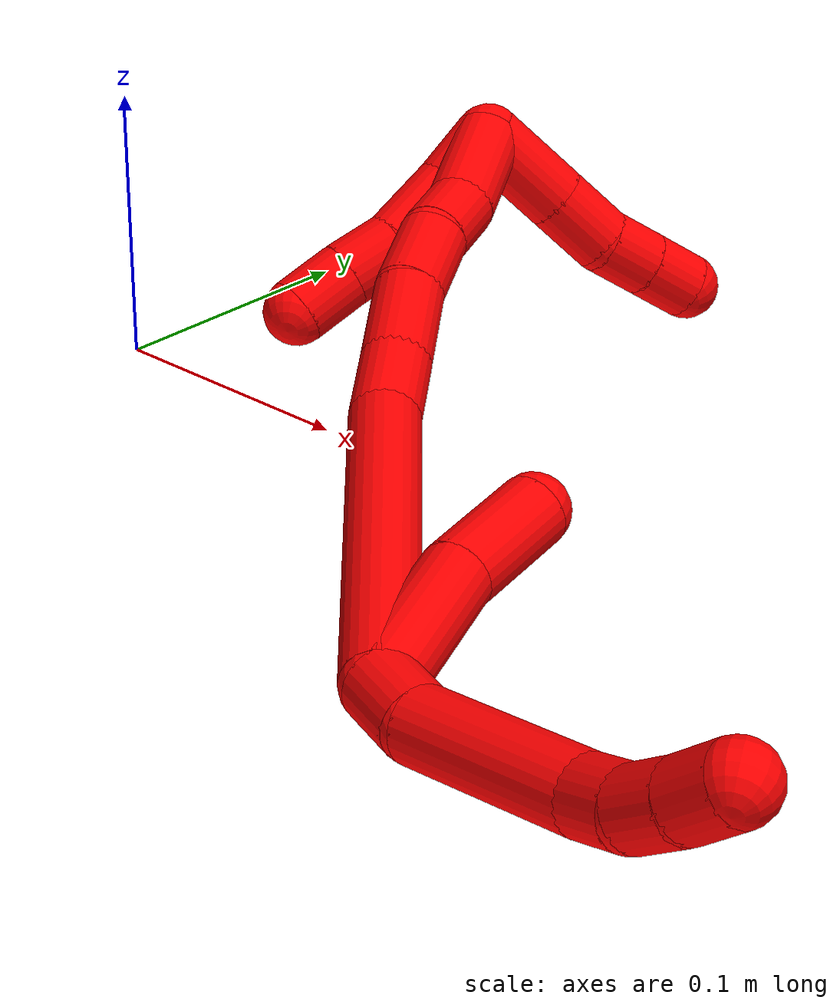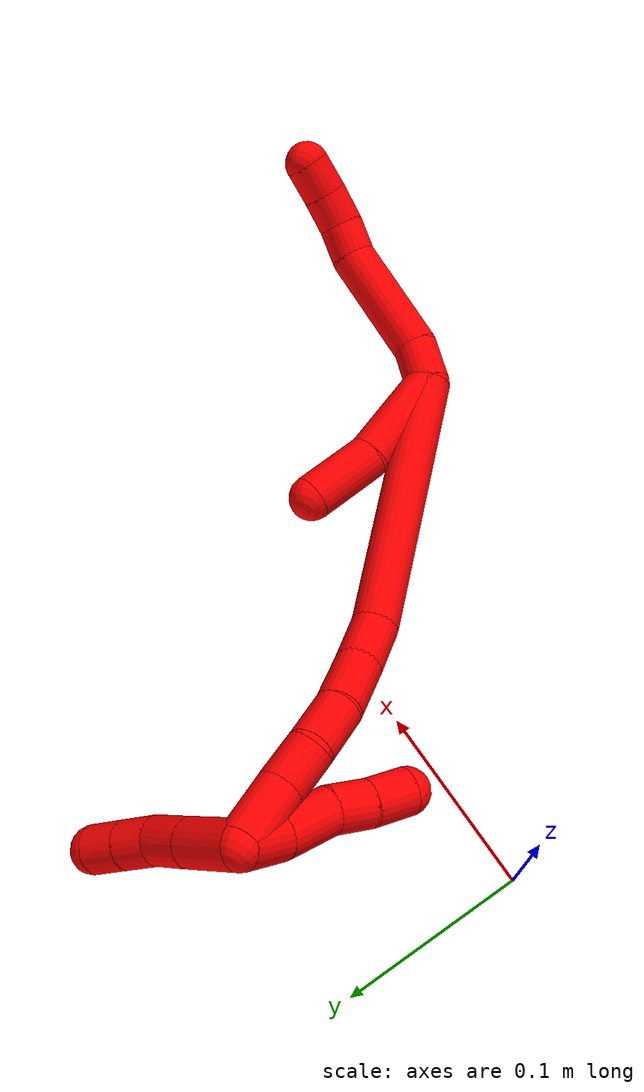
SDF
<sdf version="1.7">
 <world name="default">
  <model name="2">
   <static>0</static>
   <link name="2">
    <collision name="collision-cylinder-e_1_2_8">
     <pose>-0.007014 0.004807 0.008704 -0.504643 -0.614379 0.163212</pose>
     <geometry><cylinder><radius>0.0125</radius><length>0.024337</length></cylinder></geometry>
     <surface>
      <friction><ode><mu>1.16</mu><mu2>1.16</mu2><slip1>0</slip1><slip2>0</slip2></ode></friction>
      <contact><ode><kp>1e+06</kp><kd>1</kd><max_vel>0</max_vel><min_depth>0.001</min_depth></ode></contact>
     </surface>
    </collision>
    <visual name="visual-cylinder-e_1_2_8">
     <pose>-0.007014 0.004807 0.008704 -0.504643 -0.614379 0.163212</pose>
     <geometry><cylinder><radius>0.0125</radius><length>0.024337</length></cylinder></geometry>
     <material><ambient>1 0 0 1</ambient></material>
    </visual>
    <collision name="collision-cylinder-e_2_8_9">
     <pose>-0.037831 0.02604 0.032557 -0.825769 -0.816978 0.374772</pose>
     <geometry><cylinder><radius>0.0125</radius><length>0.065295</length></cylinder></geometry>
     <surface>
      <friction><ode><mu>1.16</mu><mu2>1.16</mu2><slip1>0</slip1><slip2>0</slip2></ode></friction>
      <contact><ode><kp>1e+06</kp><kd>1</kd><max_vel>0</max_vel><min_depth>0.001</min_depth></ode></contact>
     </surface>
    </collision>
    <visual name="visual-cylinder-e_2_8_9">
     <pose>-0.037831 0.02604 0.032557 -0.825769 -0.816978 0.374772</pose>
     <geometry><cylinder><radius>0.0125</radius><length>0.065295</length></cylinder></geometry>
     <material><ambient>1 0 0 1</ambient></material>
    </visual>
    <collision name="collision-cylinder-e_3_9_10">
     <pose>-0.069912 0.044988 0.05298 -0.446187 -0.955904 0.233969</pose>
     <geometry><cylinder><radius>0.0125</radius><length>0.020269</length></cylinder></geometry>
     <surface>
      <friction><ode><mu>1.16</mu><mu2>1.16</mu2><slip1>0</slip1><slip2>0</slip2></ode></friction>
      <contact><ode><kp>1e+06</kp><kd>1</kd><max_vel>0</max_vel><min_depth>0.001</min_depth></ode></contact>
     </surface>
    </collision>
    <visual name="visual-cylinder-e_3_9_10">
     <pose>-0.069912 0.044988 0.05298 -0.446187 -0.955904 0.233969</pose>
     <geometry><cylinder><radius>0.0125</radius><length>0.020269</length></cylinder></geometry>
     <material><ambient>1 0 0 1</ambient></material>
    </visual>
    <collision name="collision-cylinder-e_4_10_11">
     <pose>-0.087753 0.049076 0.060917 -0.531592 -1.25831 0.391213</pose>
     <geometry><cylinder><radius>0.0125</radius><length>0.020098</length></cylinder></geometry>
     <surface>
      <friction><ode><mu>1.16</mu><mu2>1.16</mu2><slip1>0</slip1><slip2>0</slip2></ode></friction>
      <contact><ode><kp>1e+06</kp><kd>1</kd><max_vel>0</max_vel><min_depth>0.001</min_depth></ode></contact>
     </surface>
    </collision>
    <visual name="visual-cylinder-e_4_10_11">
     <pose>-0.087753 0.049076 0.060917 -0.531592 -1.25831 0.391213</pose>
     <geometry><cylinder><radius>0.0125</radius><length>0.020098</length></cylinder></geometry>
     <material><ambient>1 0 0 1</ambient></material>
    </visual>
    <collision name="collision-cylinder-e_5_11_6">
     <pose>-0.107112 0.051804 0.06522 -0.616298 -1.36846 0.508028</pose>
     <geometry><cylinder><radius>0.0125</radius><length>0.020002</length></cylinder></geometry>
     <surface>
      <friction><ode><mu>1.16</mu><mu2>1.16</mu2><slip1>0</slip1><slip2>0</slip2></ode></friction>
      <contact><ode><kp>1e+06</kp><kd>1</kd><max_vel>0</max_vel><min_depth>0.001</min_depth></ode></contact>
     </surface>
    </collision>
    <visual name="visual-cylinder-e_5_11_6">
     <pose>-0.107112 0.051804 0.06522 -0.616298 -1.36846 0.508028</pose>
     <geometry><cylinder><radius>0.0125</radius><length>0.020002</length></cylinder></geometry>
     <material><ambient>1 0 0 1</ambient></material>
    </visual>
    <collision name="collision-cylinder-e_1_2_12">
     <pose>0.000442 0.005669 -0.028659 -2.9463 0.015137 -0.154221</pose>
     <geometry><cylinder><radius>0.0125</radius><length>0.058436</length></cylinder></geometry>
     <surface>
      <friction><ode><mu>1.16</mu><mu2>1.16</mu2><slip1>0</slip1><slip2>0</slip2></ode></friction>
      <contact><ode><kp>1e+06</kp><kd>1</kd><max_vel>0</max_vel><min_depth>0.001</min_depth></ode></contact>
     </surface>
    </collision>
    <visual name="visual-cylinder-e_1_2_12">
     <pose>0.000442 0.005669 -0.028659 -2.9463 0.015137 -0.154221</pose>
     <geometry><cylinder><radius>0.0125</radius><length>0.058436</length></cylinder></geometry>
     <material><ambient>1 0 0 1</ambient></material>
    </visual>
    <collision name="collision-cylinder-e_2_12_5">
     <pose>-0.002635 0.018447 -0.076527 -2.78714 -0.170184 0.888919</pose>
     <geometry><cylinder><radius>0.0125</radius><length>0.041564</length></cylinder></geometry>
     <surface>
      <friction><ode><mu>1.16</mu><mu2>1.16</mu2><slip1>0</slip1><slip2>0</slip2></ode></friction>
      <contact><ode><kp>1e+06</kp><kd>1</kd><max_vel>0</max_vel><min_depth>0.001</min_depth></ode></contact>
     </surface>
    </collision>
    <visual name="visual-cylinder-e_2_12_5">
     <pose>-0.002635 0.018447 -0.076527 -2.78714 -0.170184 0.888919</pose>
     <geometry><cylinder><radius>0.0125</radius><length>0.041564</length></cylinder></geometry>
     <material><ambient>1 0 0 1</ambient></material>
    </visual>
    <collision name="collision-cylinder-e_1_2_13">
     <pose>0.021696 -0.0072 -0.071904 3.04179 0.291666 2.48603</pose>
     <geometry><cylinder><radius>0.0125</radius><length>0.1509</length></cylinder></geometry>
     <surface>
      <friction><ode><mu>1.16</mu><mu2>1.16</mu2><slip1>0</slip1><slip2>0</slip2></ode></friction>
      <contact><ode><kp>1e+06</kp><kd>1</kd><max_vel>0</max_vel><min_depth>0.001</min_depth></ode></contact>
     </surface>
    </collision>
    <visual name="visual-cylinder-e_1_2_13">
     <pose>0.021696 -0.0072 -0.071904 3.04179 0.291666 2.48603</pose>
     <geometry><cylinder><radius>0.0125</radius><length>0.1509</length></cylinder></geometry>
     <material><ambient>1 0 0 1</ambient></material>
    </visual>
    <collision name="collision-cylinder-e_2_13_14">
     <pose>0.043401 -0.016537 -0.157438 2.9861 0.000681 0.008746</pose>
     <geometry><cylinder><radius>0.0125</radius><length>0.027594</length></cylinder></geometry>
     <surface>
      <friction><ode><mu>1.16</mu><mu2>1.16</mu2><slip1>0</slip1><slip2>0</slip2></ode></friction>
      <contact><ode><kp>1e+06</kp><kd>1</kd><max_vel>0</max_vel><min_depth>0.001</min_depth></ode></contact>
     </surface>
    </collision>
    <visual name="visual-cylinder-e_2_13_14">
     <pose>0.043401 -0.016537 -0.157438 2.9861 0.000681 0.008746</pose>
     <geometry><cylinder><radius>0.0125</radius><length>0.027594</length></cylinder></geometry>
     <material><ambient>1 0 0 1</ambient></material>
    </visual>
    <collision name="collision-cylinder-e_3_14_15">
     <pose>0.041756 -0.022076 -0.186352 2.9226 -0.105252 -0.893659</pose>
     <geometry><cylinder><radius>0.0125</radius><length>0.031489</length></cylinder></geometry>
     <surface>
      <friction><ode><mu>1.16</mu><mu2>1.16</mu2><slip1>0</slip1><slip2>0</slip2></ode></friction>
      <contact><ode><kp>1e+06</kp><kd>1</kd><max_vel>0</max_vel><min_depth>0.001</min_depth></ode></contact>
     </surface>
    </collision>
    <visual name="visual-cylinder-e_3_14_15">
     <pose>0.041756 -0.022076 -0.186352 2.9226 -0.105252 -0.893659</pose>
     <geometry><cylinder><radius>0.0125</radius><length>0.031489</length></cylinder></geometry>
     <material><ambient>1 0 0 1</ambient></material>
    </visual>
    <collision name="collision-cylinder-e_4_15_16">
     <pose>0.038229 -0.025964 -0.215361 3.10615 -0.135542 -2.6307</pose>
     <geometry><cylinder><radius>0.0125</radius><length>0.027722</length></cylinder></geometry>
     <surface>
      <friction><ode><mu>1.16</mu><mu2>1.16</mu2><slip1>0</slip1><slip2>0</slip2></ode></friction>
      <contact><ode><kp>1e+06</kp><kd>1</kd><max_vel>0</max_vel><min_depth>0.001</min_depth></ode></contact>
     </surface>
    </collision>
    <visual name="visual-cylinder-e_4_15_16">
     <pose>0.038229 -0.025964 -0.215361 3.10615 -0.135542 -2.6307</pose>
     <geometry><cylinder><radius>0.0125</radius><length>0.027722</length></cylinder></geometry>
     <material><ambient>1 0 0 1</ambient></material>
    </visual>
    <collision name="collision-cylinder-e_5_16_17">
     <pose>0.036566 -0.023997 -0.241529 -2.94688 0.016554 -0.169095</pose>
     <geometry><cylinder><radius>0.0125</radius><length>0.025368</length></cylinder></geometry>
     <surface>
      <friction><ode><mu>1.16</mu><mu2>1.16</mu2><slip1>0</slip1><slip2>0</slip2></ode></friction>
      <contact><ode><kp>1e+06</kp><kd>1</kd><max_vel>0</max_vel><min_depth>0.001</min_depth></ode></contact>
     </surface>
    </collision>
    <visual name="visual-cylinder-e_5_16_17">
     <pose>0.036566 -0.023997 -0.241529 -2.94688 0.016554 -0.169095</pose>
     <geometry><cylinder><radius>0.0125</radius><length>0.025368</length></cylinder></geometry>
     <material><ambient>1 0 0 1</ambient></material>
    </visual>
    <collision name="collision-cylinder-e_6_17_1">
     <pose>0.033877 -0.022767 -0.272165 3.07439 -0.15764 -2.33683</pose>
     <geometry><cylinder><radius>0.0125</radius><length>0.036927</length></cylinder></geometry>
     <surface>
      <friction><ode><mu>1.16</mu><mu2>1.16</mu2><slip1>0</slip1><slip2>0</slip2></ode></friction>
      <contact><ode><kp>1e+06</kp><kd>1</kd><max_vel>0</max_vel><min_depth>0.001</min_depth></ode></contact>
     </surface>
    </collision>
    <visual name="visual-cylinder-e_6_17_1">
     <pose>0.033877 -0.022767 -0.272165 3.07439 -0.15764 -2.33683</pose>
     <geometry><cylinder><radius>0.0125</radius><length>0.036927</length></cylinder></geometry>
     <material><ambient>1 0 0 1</ambient></material>
    </visual>
    <collision name="collision-cylinder-e_1_1_18">
     <pose>0.039262 -0.024595 -0.281486 0.067907 0.749932 0.026736</pose>
     <geometry><cylinder><radius>0.0125</radius><length>0.024306</length></cylinder></geometry>
     <surface>
      <friction><ode><mu>1.16</mu><mu2>1.16</mu2><slip1>0</slip1><slip2>0</slip2></ode></friction>
      <contact><ode><kp>1e+06</kp><kd>1</kd><max_vel>0</max_vel><min_depth>0.001</min_depth></ode></contact>
     </surface>
    </collision>
    <visual name="visual-cylinder-e_1_1_18">
     <pose>0.039262 -0.024595 -0.281486 0.067907 0.749932 0.026736</pose>
     <geometry><cylinder><radius>0.0125</radius><length>0.024306</length></cylinder></geometry>
     <material><ambient>1 0 0 1</ambient></material>
    </visual>
    <collision name="collision-cylinder-e_2_18_19">
     <pose>0.055371 -0.027627 -0.259188 0.17895 0.520739 0.047794</pose>
     <geometry><cylinder><radius>0.0125</radius><length>0.031457</length></cylinder></geometry>
     <surface>
      <friction><ode><mu>1.16</mu><mu2>1.16</mu2><slip1>0</slip1><slip2>0</slip2></ode></friction>
      <contact><ode><kp>1e+06</kp><kd>1</kd><max_vel>0</max_vel><min_depth>0.001</min_depth></ode></contact>
     </surface>
    </collision>
    <visual name="visual-cylinder-e_2_18_19">
     <pose>0.055371 -0.027627 -0.259188 0.17895 0.520739 0.047794</pose>
     <geometry><cylinder><radius>0.0125</radius><length>0.031457</length></cylinder></geometry>
     <material><ambient>1 0 0 1</ambient></material>
    </visual>
    <collision name="collision-cylinder-e_3_19_20">
     <pose>0.069887 -0.033991 -0.238296 0.485063 0.670439 0.171948</pose>
     <geometry><cylinder><radius>0.0125</radius><length>0.02154</length></cylinder></geometry>
     <surface>
      <friction><ode><mu>1.16</mu><mu2>1.16</mu2><slip1>0</slip1><slip2>0</slip2></ode></friction>
      <contact><ode><kp>1e+06</kp><kd>1</kd><max_vel>0</max_vel><min_depth>0.001</min_depth></ode></contact>
     </surface>
    </collision>
    <visual name="visual-cylinder-e_3_19_20">
     <pose>0.069887 -0.033991 -0.238296 0.485063 0.670439 0.171948</pose>
     <geometry><cylinder><radius>0.0125</radius><length>0.02154</length></cylinder></geometry>
     <material><ambient>1 0 0 1</ambient></material>
    </visual>
    <collision name="collision-cylinder-e_4_20_4">
     <pose>0.082833 -0.041352 -0.222003 0.370252 0.583635 0.112391</pose>
     <geometry><cylinder><radius>0.0125</radius><length>0.022697</length></cylinder></geometry>
     <surface>
      <friction><ode><mu>1.16</mu><mu2>1.16</mu2><slip1>0</slip1><slip2>0</slip2></ode></friction>
      <contact><ode><kp>1e+06</kp><kd>1</kd><max_vel>0</max_vel><min_depth>0.001</min_depth></ode></contact>
     </surface>
    </collision>
    <visual name="visual-cylinder-e_4_20_4">
     <pose>0.082833 -0.041352 -0.222003 0.370252 0.583635 0.112391</pose>
     <geometry><cylinder><radius>0.0125</radius><length>0.022697</length></cylinder></geometry>
     <material><ambient>1 0 0 1</ambient></material>
    </visual>
    <collision name="collision-cylinder-e_1_1_21">
     <pose>0.032289 -0.006424 -0.290604 -1.58482 0.074465 -0.075516</pose>
     <geometry><cylinder><radius>0.0125</radius><length>0.035237</length></cylinder></geometry>
     <surface>
      <friction><ode><mu>1.16</mu><mu2>1.16</mu2><slip1>0</slip1><slip2>0</slip2></ode></friction>
      <contact><ode><kp>1e+06</kp><kd>1</kd><max_vel>0</max_vel><min_depth>0.001</min_depth></ode></contact>
     </surface>
    </collision>
    <visual name="visual-cylinder-e_1_1_21">
     <pose>0.032289 -0.006424 -0.290604 -1.58482 0.074465 -0.075516</pose>
     <geometry><cylinder><radius>0.0125</radius><length>0.035237</length></cylinder></geometry>
     <material><ambient>1 0 0 1</ambient></material>
    </visual>
    <collision name="collision-cylinder-e_2_21_22">
     <pose>0.034436 0.023451 -0.290937 -1.57778 0.067841 -0.068316</pose>
     <geometry><cylinder><radius>0.0125</radius><length>0.024672</length></cylinder></geometry>
     <surface>
      <friction><ode><mu>1.16</mu><mu2>1.16</mu2><slip1>0</slip1><slip2>0</slip2></ode></friction>
      <contact><ode><kp>1e+06</kp><kd>1</kd><max_vel>0</max_vel><min_depth>0.001</min_depth></ode></contact>
     </surface>
    </collision>
    <visual name="visual-cylinder-e_2_21_22">
     <pose>0.034436 0.023451 -0.290937 -1.57778 0.067841 -0.068316</pose>
     <geometry><cylinder><radius>0.0125</radius><length>0.024672</length></cylinder></geometry>
     <material><ambient>1 0 0 1</ambient></material>
    </visual>
    <collision name="collision-cylinder-e_3_22_23">
     <pose>0.035105 0.045475 -0.293565 -1.82674 -0.016669 0.021592</pose>
     <geometry><cylinder><radius>0.0125</radius><length>0.020091</length></cylinder></geometry>
     <surface>
      <friction><ode><mu>1.16</mu><mu2>1.16</mu2><slip1>0</slip1><slip2>0</slip2></ode></friction>
      <contact><ode><kp>1e+06</kp><kd>1</kd><max_vel>0</max_vel><min_depth>0.001</min_depth></ode></contact>
     </surface>
    </collision>
    <visual name="visual-cylinder-e_3_22_23">
     <pose>0.035105 0.045475 -0.293565 -1.82674 -0.016669 0.021592</pose>
     <geometry><cylinder><radius>0.0125</radius><length>0.020091</length></cylinder></geometry>
     <material><ambient>1 0 0 1</ambient></material>
    </visual>
    <collision name="collision-cylinder-e_4_23_3">
     <pose>0.034825 0.064868 -0.298631 -1.82581 -0.01121 0.014507</pose>
     <geometry><cylinder><radius>0.0125</radius><length>0.020001</length></cylinder></geometry>
     <surface>
      <friction><ode><mu>1.16</mu><mu2>1.16</mu2><slip1>0</slip1><slip2>0</slip2></ode></friction>
      <contact><ode><kp>1e+06</kp><kd>1</kd><max_vel>0</max_vel><min_depth>0.001</min_depth></ode></contact>
     </surface>
    </collision>
    <visual name="visual-cylinder-e_4_23_3">
     <pose>0.034825 0.064868 -0.298631 -1.82581 -0.01121 0.014507</pose>
     <geometry><cylinder><radius>0.0125</radius><length>0.020001</length></cylinder></geometry>
     <material><ambient>1 0 0 1</ambient></material>
    </visual>
    <collision name="collision-sphere-3">
     <pose>0.034713 0.074544 -0.301153 0 -0 0</pose>
     <geometry><sphere><radius>0.0125</radius></sphere></geometry>
     <surface>
      <friction><ode><mu>1.16</mu><mu2>1.16</mu2><slip1>0</slip1><slip2>0</slip2></ode></friction>
      <contact><ode><kp>1e+06</kp><kd>1</kd><max_vel>0</max_vel><min_depth>0.001</min_depth></ode></contact>
     </surface>
    </collision>
    <visual name="visual-sphere-3">
     <pose>0.034713 0.074544 -0.301153 0 -0 0</pose>
     <geometry><sphere><radius>0.0125</radius></sphere></geometry>
     <material><ambient>1 0 0 1</ambient></material>
    </visual>
    <collision name="collision-sphere-23">
     <pose>0.034938 0.055192 -0.296108 0 -0 0</pose>
     <geometry><sphere><radius>0.0125</radius></sphere></geometry>
     <surface>
      <friction><ode><mu>1.16</mu><mu2>1.16</mu2><slip1>0</slip1><slip2>0</slip2></ode></friction>
      <contact><ode><kp>1e+06</kp><kd>1</kd><max_vel>0</max_vel><min_depth>0.001</min_depth></ode></contact>
     </surface>
    </collision>
    <visual name="visual-sphere-23">
     <pose>0.034938 0.055192 -0.296108 0 -0 0</pose>
     <geometry><sphere><radius>0.0125</radius></sphere></geometry>
     <material><ambient>1 0 0 1</ambient></material>
    </visual>
    <collision name="collision-sphere-22">
     <pose>0.035272 0.035758 -0.291023 0 -0 0</pose>
     <geometry><sphere><radius>0.0125</radius></sphere></geometry>
     <surface>
      <friction><ode><mu>1.16</mu><mu2>1.16</mu2><slip1>0</slip1><slip2>0</slip2></ode></friction>
      <contact><ode><kp>1e+06</kp><kd>1</kd><max_vel>0</max_vel><min_depth>0.001</min_depth></ode></contact>
     </surface>
    </collision>
    <visual name="visual-sphere-22">
     <pose>0.035272 0.035758 -0.291023 0 -0 0</pose>
     <geometry><sphere><radius>0.0125</radius></sphere></geometry>
     <material><ambient>1 0 0 1</ambient></material>
    </visual>
    <collision name="collision-sphere-21">
     <pose>0.0336 0.011144 -0.290851 0 -0 0</pose>
     <geometry><sphere><radius>0.0125</radius></sphere></geometry>
     <surface>
      <friction><ode><mu>1.16</mu><mu2>1.16</mu2><slip1>0</slip1><slip2>0</slip2></ode></friction>
      <contact><ode><kp>1e+06</kp><kd>1</kd><max_vel>0</max_vel><min_depth>0.001</min_depth></ode></contact>
     </surface>
    </collision>
    <visual name="visual-sphere-21">
     <pose>0.0336 0.011144 -0.290851 0 -0 0</pose>
     <geometry><sphere><radius>0.0125</radius></sphere></geometry>
     <material><ambient>1 0 0 1</ambient></material>
    </visual>
    <collision name="collision-sphere-4">
     <pose>0.089087 -0.044779 -0.213175 0 -0 0</pose>
     <geometry><sphere><radius>0.0125</radius></sphere></geometry>
     <surface>
      <friction><ode><mu>1.16</mu><mu2>1.16</mu2><slip1>0</slip1><slip2>0</slip2></ode></friction>
      <contact><ode><kp>1e+06</kp><kd>1</kd><max_vel>0</max_vel><min_depth>0.001</min_depth></ode></contact>
     </surface>
    </collision>
    <visual name="visual-sphere-4">
     <pose>0.089087 -0.044779 -0.213175 0 -0 0</pose>
     <geometry><sphere><radius>0.0125</radius></sphere></geometry>
     <material><ambient>1 0 0 1</ambient></material>
    </visual>
    <collision name="collision-sphere-20">
     <pose>0.076579 -0.037925 -0.230831 0 -0 0</pose>
     <geometry><sphere><radius>0.0125</radius></sphere></geometry>
     <surface>
      <friction><ode><mu>1.16</mu><mu2>1.16</mu2><slip1>0</slip1><slip2>0</slip2></ode></friction>
      <contact><ode><kp>1e+06</kp><kd>1</kd><max_vel>0</max_vel><min_depth>0.001</min_depth></ode></contact>
     </surface>
    </collision>
    <visual name="visual-sphere-20">
     <pose>0.076579 -0.037925 -0.230831 0 -0 0</pose>
     <geometry><sphere><radius>0.0125</radius></sphere></geometry>
     <material><ambient>1 0 0 1</ambient></material>
    </visual>
    <collision name="collision-sphere-6">
     <pose>-0.116909 0.052966 0.06686 0 -0 0</pose>
     <geometry><sphere><radius>0.0125</radius></sphere></geometry>
     <surface>
      <friction><ode><mu>1.16</mu><mu2>1.16</mu2><slip1>0</slip1><slip2>0</slip2></ode></friction>
      <contact><ode><kp>1e+06</kp><kd>1</kd><max_vel>0</max_vel><min_depth>0.001</min_depth></ode></contact>
     </surface>
    </collision>
    <visual name="visual-sphere-6">
     <pose>-0.116909 0.052966 0.06686 0 -0 0</pose>
     <geometry><sphere><radius>0.0125</radius></sphere></geometry>
     <material><ambient>1 0 0 1</ambient></material>
    </visual>
    <collision name="collision-sphere-11">
     <pose>-0.097315 0.050642 0.06358 0 -0 0</pose>
     <geometry><sphere><radius>0.0125</radius></sphere></geometry>
     <surface>
      <friction><ode><mu>1.16</mu><mu2>1.16</mu2><slip1>0</slip1><slip2>0</slip2></ode></friction>
      <contact><ode><kp>1e+06</kp><kd>1</kd><max_vel>0</max_vel><min_depth>0.001</min_depth></ode></contact>
     </surface>
    </collision>
    <visual name="visual-sphere-11">
     <pose>-0.097315 0.050642 0.06358 0 -0 0</pose>
     <geometry><sphere><radius>0.0125</radius></sphere></geometry>
     <material><ambient>1 0 0 1</ambient></material>
    </visual>
    <collision name="collision-sphere-10">
     <pose>-0.07819 0.04751 0.058254 0 -0 0</pose>
     <geometry><sphere><radius>0.0125</radius></sphere></geometry>
     <surface>
      <friction><ode><mu>1.16</mu><mu2>1.16</mu2><slip1>0</slip1><slip2>0</slip2></ode></friction>
      <contact><ode><kp>1e+06</kp><kd>1</kd><max_vel>0</max_vel><min_depth>0.001</min_depth></ode></contact>
     </surface>
    </collision>
    <visual name="visual-sphere-10">
     <pose>-0.07819 0.04751 0.058254 0 -0 0</pose>
     <geometry><sphere><radius>0.0125</radius></sphere></geometry>
     <material><ambient>1 0 0 1</ambient></material>
    </visual>
    <collision name="collision-sphere-9">
     <pose>-0.061634 0.042465 0.047707 0 -0 0</pose>
     <geometry><sphere><radius>0.0125</radius></sphere></geometry>
     <surface>
      <friction><ode><mu>1.16</mu><mu2>1.16</mu2><slip1>0</slip1><slip2>0</slip2></ode></friction>
      <contact><ode><kp>1e+06</kp><kd>1</kd><max_vel>0</max_vel><min_depth>0.001</min_depth></ode></contact>
     </surface>
    </collision>
    <visual name="visual-sphere-9">
     <pose>-0.061634 0.042465 0.047707 0 -0 0</pose>
     <geometry><sphere><radius>0.0125</radius></sphere></geometry>
     <material><ambient>1 0 0 1</ambient></material>
    </visual>
    <collision name="collision-sphere-2">
     <geometry><sphere><radius>0.0125</radius></sphere></geometry>
     <surface>
      <friction><ode><mu>1.16</mu><mu2>1.16</mu2><slip1>0</slip1><slip2>0</slip2></ode></friction>
      <contact><ode><kp>1e+06</kp><kd>1</kd><max_vel>0</max_vel><min_depth>0.001</min_depth></ode></contact>
     </surface>
    </collision>
    <visual name="visual-sphere-2">
     <geometry><sphere><radius>0.0125</radius></sphere></geometry>
     <material><ambient>1 0 0 1</ambient></material>
    </visual>
    <collision name="collision-sphere-19">
     <pose>0.063196 -0.030056 -0.245762 0 -0 0</pose>
     <geometry><sphere><radius>0.0125</radius></sphere></geometry>
     <surface>
      <friction><ode><mu>1.16</mu><mu2>1.16</mu2><slip1>0</slip1><slip2>0</slip2></ode></friction>
      <contact><ode><kp>1e+06</kp><kd>1</kd><max_vel>0</max_vel><min_depth>0.001</min_depth></ode></contact>
     </surface>
    </collision>
    <visual name="visual-sphere-19">
     <pose>0.063196 -0.030056 -0.245762 0 -0 0</pose>
     <geometry><sphere><radius>0.0125</radius></sphere></geometry>
     <material><ambient>1 0 0 1</ambient></material>
    </visual>
    <collision name="collision-sphere-8">
     <pose>-0.014029 0.009615 0.017407 0 -0 0</pose>
     <geometry><sphere><radius>0.0125</radius></sphere></geometry>
     <surface>
      <friction><ode><mu>1.16</mu><mu2>1.16</mu2><slip1>0</slip1><slip2>0</slip2></ode></friction>
      <contact><ode><kp>1e+06</kp><kd>1</kd><max_vel>0</max_vel><min_depth>0.001</min_depth></ode></contact>
     </surface>
    </collision>
    <visual name="visual-sphere-8">
     <pose>-0.014029 0.009615 0.017407 0 -0 0</pose>
     <geometry><sphere><radius>0.0125</radius></sphere></geometry>
     <material><ambient>1 0 0 1</ambient></material>
    </visual>
    <collision name="collision-sphere-12">
     <pose>0.000885 0.011339 -0.057319 0 -0 0</pose>
     <geometry><sphere><radius>0.0125</radius></sphere></geometry>
     <surface>
      <friction><ode><mu>1.16</mu><mu2>1.16</mu2><slip1>0</slip1><slip2>0</slip2></ode></friction>
      <contact><ode><kp>1e+06</kp><kd>1</kd><max_vel>0</max_vel><min_depth>0.001</min_depth></ode></contact>
     </surface>
    </collision>
    <visual name="visual-sphere-12">
     <pose>0.000885 0.011339 -0.057319 0 -0 0</pose>
     <geometry><sphere><radius>0.0125</radius></sphere></geometry>
     <material><ambient>1 0 0 1</ambient></material>
    </visual>
    <collision name="collision-sphere-5">
     <pose>-0.006155 0.025556 -0.095736 0 -0 0</pose>
     <geometry><sphere><radius>0.0125</radius></sphere></geometry>
     <surface>
      <friction><ode><mu>1.16</mu><mu2>1.16</mu2><slip1>0</slip1><slip2>0</slip2></ode></friction>
      <contact><ode><kp>1e+06</kp><kd>1</kd><max_vel>0</max_vel><min_depth>0.001</min_depth></ode></contact>
     </surface>
    </collision>
    <visual name="visual-sphere-5">
     <pose>-0.006155 0.025556 -0.095736 0 -0 0</pose>
     <geometry><sphere><radius>0.0125</radius></sphere></geometry>
     <material><ambient>1 0 0 1</ambient></material>
    </visual>
    <collision name="collision-sphere-13">
     <pose>0.043391 -0.014401 -0.143808 0 -0 0</pose>
     <geometry><sphere><radius>0.0125</radius></sphere></geometry>
     <surface>
      <friction><ode><mu>1.16</mu><mu2>1.16</mu2><slip1>0</slip1><slip2>0</slip2></ode></friction>
      <contact><ode><kp>1e+06</kp><kd>1</kd><max_vel>0</max_vel><min_depth>0.001</min_depth></ode></contact>
     </surface>
    </collision>
    <visual name="visual-sphere-13">
     <pose>0.043391 -0.014401 -0.143808 0 -0 0</pose>
     <geometry><sphere><radius>0.0125</radius></sphere></geometry>
     <material><ambient>1 0 0 1</ambient></material>
    </visual>
    <collision name="collision-sphere-14">
     <pose>0.04341 -0.018674 -0.171068 0 -0 0</pose>
     <geometry><sphere><radius>0.0125</radius></sphere></geometry>
     <surface>
      <friction><ode><mu>1.16</mu><mu2>1.16</mu2><slip1>0</slip1><slip2>0</slip2></ode></friction>
      <contact><ode><kp>1e+06</kp><kd>1</kd><max_vel>0</max_vel><min_depth>0.001</min_depth></ode></contact>
     </surface>
    </collision>
    <visual name="visual-sphere-14">
     <pose>0.04341 -0.018674 -0.171068 0 -0 0</pose>
     <geometry><sphere><radius>0.0125</radius></sphere></geometry>
     <material><ambient>1 0 0 1</ambient></material>
    </visual>
    <collision name="collision-sphere-15">
     <pose>0.040102 -0.025477 -0.201636 0 -0 0</pose>
     <geometry><sphere><radius>0.0125</radius></sphere></geometry>
     <surface>
      <friction><ode><mu>1.16</mu><mu2>1.16</mu2><slip1>0</slip1><slip2>0</slip2></ode></friction>
      <contact><ode><kp>1e+06</kp><kd>1</kd><max_vel>0</max_vel><min_depth>0.001</min_depth></ode></contact>
     </surface>
    </collision>
    <visual name="visual-sphere-15">
     <pose>0.040102 -0.025477 -0.201636 0 -0 0</pose>
     <geometry><sphere><radius>0.0125</radius></sphere></geometry>
     <material><ambient>1 0 0 1</ambient></material>
    </visual>
    <collision name="collision-sphere-16">
     <pose>0.036356 -0.026451 -0.229087 0 -0 0</pose>
     <geometry><sphere><radius>0.0125</radius></sphere></geometry>
     <surface>
      <friction><ode><mu>1.16</mu><mu2>1.16</mu2><slip1>0</slip1><slip2>0</slip2></ode></friction>
      <contact><ode><kp>1e+06</kp><kd>1</kd><max_vel>0</max_vel><min_depth>0.001</min_depth></ode></contact>
     </surface>
    </collision>
    <visual name="visual-sphere-16">
     <pose>0.036356 -0.026451 -0.229087 0 -0 0</pose>
     <geometry><sphere><radius>0.0125</radius></sphere></geometry>
     <material><ambient>1 0 0 1</ambient></material>
    </visual>
    <collision name="collision-sphere-17">
     <pose>0.036776 -0.021543 -0.253971 0 -0 0</pose>
     <geometry><sphere><radius>0.0125</radius></sphere></geometry>
     <surface>
      <friction><ode><mu>1.16</mu><mu2>1.16</mu2><slip1>0</slip1><slip2>0</slip2></ode></friction>
      <contact><ode><kp>1e+06</kp><kd>1</kd><max_vel>0</max_vel><min_depth>0.001</min_depth></ode></contact>
     </surface>
    </collision>
    <visual name="visual-sphere-17">
     <pose>0.036776 -0.021543 -0.253971 0 -0 0</pose>
     <geometry><sphere><radius>0.0125</radius></sphere></geometry>
     <material><ambient>1 0 0 1</ambient></material>
    </visual>
    <collision name="collision-sphere-1">
     <pose>0.030978 -0.023992 -0.290358 0 -0 0</pose>
     <geometry><sphere><radius>0.0125</radius></sphere></geometry>
     <surface>
      <friction><ode><mu>1.16</mu><mu2>1.16</mu2><slip1>0</slip1><slip2>0</slip2></ode></friction>
      <contact><ode><kp>1e+06</kp><kd>1</kd><max_vel>0</max_vel><min_depth>0.001</min_depth></ode></contact>
     </surface>
    </collision>
    <visual name="visual-sphere-1">
     <pose>0.030978 -0.023992 -0.290358 0 -0 0</pose>
     <geometry><sphere><radius>0.0125</radius></sphere></geometry>
     <material><ambient>1 0 0 1</ambient></material>
    </visual>
    <collision name="collision-sphere-18">
     <pose>0.047545 -0.025199 -0.272613 0 -0 0</pose>
     <geometry><sphere><radius>0.0125</radius></sphere></geometry>
     <surface>
      <friction><ode><mu>1.16</mu><mu2>1.16</mu2><slip1>0</slip1><slip2>0</slip2></ode></friction>
      <contact><ode><kp>1e+06</kp><kd>1</kd><max_vel>0</max_vel><min_depth>0.001</min_depth></ode></contact>
     </surface>
    </collision>
    <visual name="visual-sphere-18">
     <pose>0.047545 -0.025199 -0.272613 0 -0 0</pose>
     <geometry><sphere><radius>0.0125</radius></sphere></geometry>
     <material><ambient>1 0 0 1</ambient></material>
    </visual>
    <inertial>
     <pose>0.01393 0.001157 -0.128774 0 -0 0</pose>
     <mass>0.75</mass>
     <inertia><ixx>1e-05</ixx><ixy>0</ixy><ixz>0</ixz><iyy>0.000431</iyy><iyz>0</iyz><izz>-8.3e-05</izz></inertia>
    </inertial>
   </link>
   <pose>0.246189 -0.124981 0.012221 -1.93084 0.816042 -2.92129</pose>
  </model>
 </world>
</sdf>
